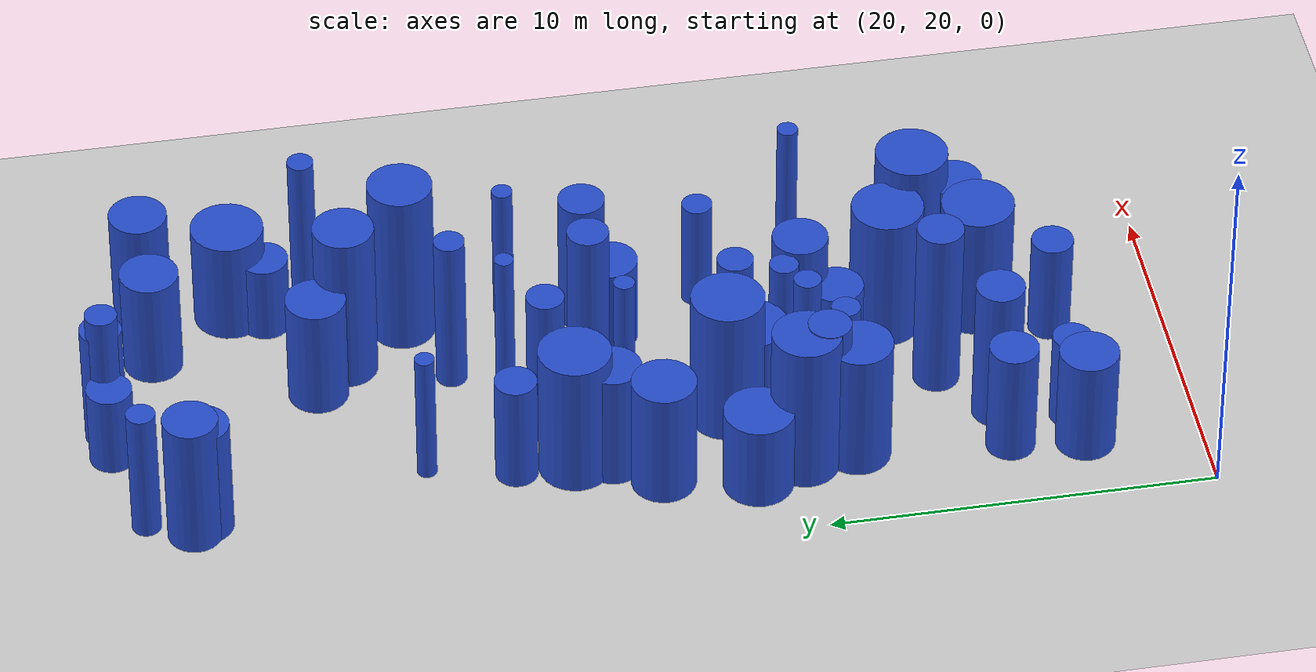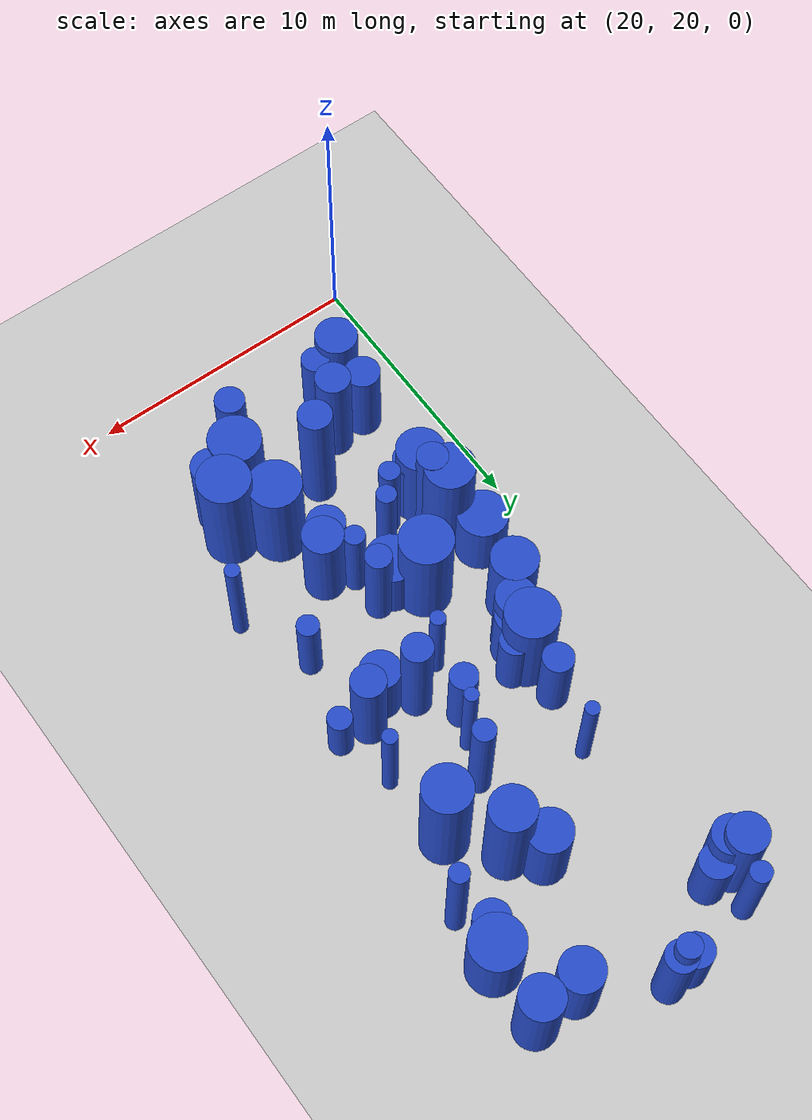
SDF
<sdf version="1.6">
 <world name="default">
  <model name="ground_plane">
   <static>1</static>
   <link name="link">
    <collision name="collision">
     <geometry><plane><normal>0 0 1</normal><size>100 100</size></plane></geometry>
     <surface><friction><ode><mu>100</mu><mu2>50</mu2></ode></friction></surface>
    </collision>
    <visual name="visual">
     <cast_shadows>0</cast_shadows>
     <geometry><plane><normal>0 0 1</normal><size>100 100</size></plane></geometry>
     <material>
      <script><uri>file://media/materials/scripts/gazebo.material</uri><name>Gazebo/Grey</name></script>
     </material>
    </visual>
   </link>
  </model>
  <model name="8">
   <static>0</static>
   <link name="link">
    <inertial>
     <mass>2</mass>
     <inertia><ixx>2.56634</ixx><ixy>0</ixy><ixz>0</ixz><iyy>2.56634</iyy><iyz>0</iyz><izz>0.222806</izz></inertia>
    </inertial>
    <collision name="collision">
     <geometry><cylinder><length>3.83792</length><radius>0.472024</radius></cylinder></geometry>
     <surface><contact><collide_without_contact>1</collide_without_contact></contact></surface>
    </collision>
    <visual name="visual">
     <geometry><cylinder><length>3.83792</length><radius>0.472024</radius></cylinder></geometry>
     <material>
      <script><uri>file://media/materials/scripts/gazebo.material</uri><name>Gazebo/Blue</name></script>
     </material>
    </visual>
    <gravity>0</gravity>
   </link>
   <pose>26.1172 31.3274 1.91896 0 -0 0</pose>
  </model>
  <model name="22">
   <static>0</static>
   <link name="link">
    <inertial>
     <mass>2</mass>
     <inertia><ixx>1.84413</ixx><ixy>0</ixy><ixz>0</ixz><iyy>1.84413</iyy><iyz>0</iyz><izz>0.585229</izz></inertia>
    </inertial>
    <collision name="collision">
     <geometry><cylinder><length>3.05108</length><radius>0.765002</radius></cylinder></geometry>
     <surface><contact><collide_without_contact>1</collide_without_contact></contact></surface>
    </collision>
    <visual name="visual">
     <geometry><cylinder><length>3.05108</length><radius>0.765002</radius></cylinder></geometry>
     <material>
      <script><uri>file://media/materials/scripts/gazebo.material</uri><name>Gazebo/Blue</name></script>
     </material>
    </visual>
    <gravity>0</gravity>
   </link>
   <pose>29.0774 45.9975 1.52554 0 -0 0</pose>
  </model>
  <model name="26">
   <static>0</static>
   <link name="link">
    <inertial>
     <mass>2</mass>
     <inertia><ixx>1.40947</ixx><ixy>0</ixy><ixz>0</ixz><iyy>1.40947</iyy><iyz>0</iyz><izz>0.829551</izz></inertia>
    </inertial>
    <collision name="collision">
     <geometry><cylinder><length>2.44298</length><radius>0.910797</radius></cylinder></geometry>
     <surface><contact><collide_without_contact>1</collide_without_contact></contact></surface>
    </collision>
    <visual name="visual">
     <geometry><cylinder><length>2.44298</length><radius>0.910797</radius></cylinder></geometry>
     <material>
      <script><uri>file://media/materials/scripts/gazebo.material</uri><name>Gazebo/Blue</name></script>
     </material>
    </visual>
    <gravity>0</gravity>
   </link>
   <pose>21.8699 31.4897 1.22149 0 -0 0</pose>
  </model>
  <model name="45">
   <static>0</static>
   <link name="link">
    <inertial>
     <mass>2</mass>
     <inertia><ixx>1.79897</ixx><ixy>0</ixy><ixz>0</ixz><iyy>1.79897</iyy><iyz>0</iyz><izz>0.441379</izz></inertia>
    </inertial>
    <collision name="collision">
     <geometry><cylinder><length>3.07729</length><radius>0.664364</radius></cylinder></geometry>
     <surface><contact><collide_without_contact>1</collide_without_contact></contact></surface>
    </collision>
    <visual name="visual">
     <geometry><cylinder><length>3.07729</length><radius>0.664364</radius></cylinder></geometry>
     <material>
      <script><uri>file://media/materials/scripts/gazebo.material</uri><name>Gazebo/Blue</name></script>
     </material>
    </visual>
    <gravity>0</gravity>
   </link>
   <pose>22.8185 28.6538 1.53864 0 -0 0</pose>
  </model>
  <model name="57">
   <static>0</static>
   <link name="link">
    <inertial>
     <mass>2</mass>
     <inertia><ixx>2.18418</ixx><ixy>0</ixy><ixz>0</ixz><iyy>2.18418</iyy><iyz>0</iyz><izz>0.482198</izz></inertia>
    </inertial>
    <collision name="collision">
     <geometry><cylinder><length>3.41445</length><radius>0.694405</radius></cylinder></geometry>
     <surface><contact><collide_without_contact>1</collide_without_contact></contact></surface>
    </collision>
    <visual name="visual">
     <geometry><cylinder><length>3.41445</length><radius>0.694405</radius></cylinder></geometry>
     <material>
      <script><uri>file://media/materials/scripts/gazebo.material</uri><name>Gazebo/Blue</name></script>
     </material>
    </visual>
    <gravity>0</gravity>
   </link>
   <pose>22.7422 45.4386 1.70723 0 -0 0</pose>
  </model>
  <model name="74">
   <static>0</static>
   <link name="link">
    <inertial>
     <mass>2</mass>
     <inertia><ixx>3.58592</ixx><ixy>0</ixy><ixz>0</ixz><iyy>3.58592</iyy><iyz>0</iyz><izz>0.162136</izz></inertia>
    </inertial>
    <collision name="collision">
     <geometry><cylinder><length>4.58575</length><radius>0.402661</radius></cylinder></geometry>
     <surface><contact><collide_without_contact>1</collide_without_contact></contact></surface>
    </collision>
    <visual name="visual">
     <geometry><cylinder><length>4.58575</length><radius>0.402661</radius></cylinder></geometry>
     <material>
      <script><uri>file://media/materials/scripts/gazebo.material</uri><name>Gazebo/Blue</name></script>
     </material>
    </visual>
    <gravity>0</gravity>
   </link>
   <pose>27.2099 38.5082 2.29288 0 -0 0</pose>
  </model>
  <model name="79">
   <static>0</static>
   <link name="link">
    <inertial>
     <mass>2</mass>
     <inertia><ixx>2.97852</ixx><ixy>0</ixy><ixz>0</ixz><iyy>2.97852</iyy><iyz>0</iyz><izz>0.125524</izz></inertia>
    </inertial>
    <collision name="collision">
     <geometry><cylinder><length>4.18265</length><radius>0.354294</radius></cylinder></geometry>
     <surface><contact><collide_without_contact>1</collide_without_contact></contact></surface>
    </collision>
    <visual name="visual">
     <geometry><cylinder><length>4.18265</length><radius>0.354294</radius></cylinder></geometry>
     <material>
      <script><uri>file://media/materials/scripts/gazebo.material</uri><name>Gazebo/Blue</name></script>
     </material>
    </visual>
    <gravity>0</gravity>
   </link>
   <pose>24.6514 29.743 2.09133 0 -0 0</pose>
  </model>
  <model name="82">
   <static>0</static>
   <link name="link">
    <inertial>
     <mass>2</mass>
     <inertia><ixx>1.92476</ixx><ixy>0</ixy><ixz>0</ixz><iyy>1.92476</iyy><iyz>0</iyz><izz>0.900452</izz></inertia>
    </inertial>
    <collision name="collision">
     <geometry><cylinder><length>2.97442</length><radius>0.948921</radius></cylinder></geometry>
     <surface><contact><collide_without_contact>1</collide_without_contact></contact></surface>
    </collision>
    <visual name="visual">
     <geometry><cylinder><length>2.97442</length><radius>0.948921</radius></cylinder></geometry>
     <material>
      <script><uri>file://media/materials/scripts/gazebo.material</uri><name>Gazebo/Blue</name></script>
     </material>
    </visual>
    <gravity>0</gravity>
   </link>
   <pose>30.6164 43.7903 1.48721 0 -0 0</pose>
  </model>
  <model name="99">
   <static>0</static>
   <link name="link">
    <inertial>
     <mass>2</mass>
     <inertia><ixx>2.24551</ixx><ixy>0</ixy><ixz>0</ixz><iyy>2.24551</iyy><iyz>0</iyz><izz>0.698313</izz></inertia>
    </inertial>
    <collision name="collision">
     <geometry><cylinder><length>3.37315</length><radius>0.835651</radius></cylinder></geometry>
     <surface><contact><collide_without_contact>1</collide_without_contact></contact></surface>
    </collision>
    <visual name="visual">
     <geometry><cylinder><length>3.37315</length><radius>0.835651</radius></cylinder></geometry>
     <material>
      <script><uri>file://media/materials/scripts/gazebo.material</uri><name>Gazebo/Blue</name></script>
     </material>
    </visual>
    <gravity>0</gravity>
   </link>
   <pose>22.3578 33.8355 1.68657 0 -0 0</pose>
  </model>
  <model name="100">
   <static>0</static>
   <link name="link">
    <inertial>
     <mass>2</mass>
     <inertia><ixx>1.16576</ixx><ixy>0</ixy><ixz>0</ixz><iyy>1.16576</iyy><iyz>0</iyz><izz>0.479179</izz></inertia>
    </inertial>
    <collision name="collision">
     <geometry><cylinder><length>2.35733</length><radius>0.692228</radius></cylinder></geometry>
     <surface><contact><collide_without_contact>1</collide_without_contact></contact></surface>
    </collision>
    <visual name="visual">
     <geometry><cylinder><length>2.35733</length><radius>0.692228</radius></cylinder></geometry>
     <material>
      <script><uri>file://media/materials/scripts/gazebo.material</uri><name>Gazebo/Blue</name></script>
     </material>
    </visual>
    <gravity>0</gravity>
   </link>
   <pose>26.3754 28.6172 1.17867 0 -0 0</pose>
  </model>
  <model name="102">
   <static>0</static>
   <link name="link">
    <inertial>
     <mass>2</mass>
     <inertia><ixx>2.03174</ixx><ixy>0</ixy><ixz>0</ixz><iyy>2.03174</iyy><iyz>0</iyz><izz>0.142404</izz></inertia>
    </inertial>
    <collision name="collision">
     <geometry><cylinder><length>3.42975</length><radius>0.377365</radius></cylinder></geometry>
     <surface><contact><collide_without_contact>1</collide_without_contact></contact></surface>
    </collision>
    <visual name="visual">
     <geometry><cylinder><length>3.42975</length><radius>0.377365</radius></cylinder></geometry>
     <material>
      <script><uri>file://media/materials/scripts/gazebo.material</uri><name>Gazebo/Blue</name></script>
     </material>
    </visual>
    <gravity>0</gravity>
   </link>
   <pose>26.1844 30.0475 1.71488 0 -0 0</pose>
  </model>
  <model name="120">
   <static>0</static>
   <link name="link">
    <inertial>
     <mass>2</mass>
     <inertia><ixx>1.34975</ixx><ixy>0</ixy><ixz>0</ixz><iyy>1.34975</iyy><iyz>0</iyz><izz>0.510108</izz></inertia>
    </inertial>
    <collision name="collision">
     <geometry><cylinder><length>2.56285</length><radius>0.714219</radius></cylinder></geometry>
     <surface><contact><collide_without_contact>1</collide_without_contact></contact></surface>
    </collision>
    <visual name="visual">
     <geometry><cylinder><length>2.56285</length><radius>0.714219</radius></cylinder></geometry>
     <material>
      <script><uri>file://media/materials/scripts/gazebo.material</uri><name>Gazebo/Blue</name></script>
     </material>
    </visual>
    <gravity>0</gravity>
   </link>
   <pose>28.1202 34.2139 1.28142 0 -0 0</pose>
  </model>
  <model name="126">
   <static>0</static>
   <link name="link">
    <inertial>
     <mass>2</mass>
     <inertia><ixx>1.99303</ixx><ixy>0</ixy><ixz>0</ixz><iyy>1.99303</iyy><iyz>0</iyz><izz>0.607698</izz></inertia>
    </inertial>
    <collision name="collision">
     <geometry><cylinder><length>3.18356</length><radius>0.77955</radius></cylinder></geometry>
     <surface><contact><collide_without_contact>1</collide_without_contact></contact></surface>
    </collision>
    <visual name="visual">
     <geometry><cylinder><length>3.18356</length><radius>0.77955</radius></cylinder></geometry>
     <material>
      <script><uri>file://media/materials/scripts/gazebo.material</uri><name>Gazebo/Blue</name></script>
     </material>
    </visual>
    <gravity>0</gravity>
   </link>
   <pose>27.1803 41.9705 1.59178 0 -0 0</pose>
  </model>
  <model name="128">
   <static>0</static>
   <link name="link">
    <inertial>
     <mass>2</mass>
     <inertia><ixx>2.677</ixx><ixy>0</ixy><ixz>0</ixz><iyy>2.677</iyy><iyz>0</iyz><izz>0.902624</izz></inertia>
    </inertial>
    <collision name="collision">
     <geometry><cylinder><length>3.65433</length><radius>0.950065</radius></cylinder></geometry>
     <surface><contact><collide_without_contact>1</collide_without_contact></contact></surface>
    </collision>
    <visual name="visual">
     <geometry><cylinder><length>3.65433</length><radius>0.950065</radius></cylinder></geometry>
     <material>
      <script><uri>file://media/materials/scripts/gazebo.material</uri><name>Gazebo/Blue</name></script>
     </material>
    </visual>
    <gravity>0</gravity>
   </link>
   <pose>27.4181 24.7427 1.82716 0 -0 0</pose>
  </model>
  <model name="129">
   <static>0</static>
   <link name="link">
    <inertial>
     <mass>2</mass>
     <inertia><ixx>4.2289</ixx><ixy>0</ixy><ixz>0</ixz><iyy>4.2289</iyy><iyz>0</iyz><izz>0.722048</izz></inertia>
    </inertial>
    <collision name="collision">
     <geometry><cylinder><length>4.81739</length><radius>0.849734</radius></cylinder></geometry>
     <surface><contact><collide_without_contact>1</collide_without_contact></contact></surface>
    </collision>
    <visual name="visual">
     <geometry><cylinder><length>4.81739</length><radius>0.849734</radius></cylinder></geometry>
     <material>
      <script><uri>file://media/materials/scripts/gazebo.material</uri><name>Gazebo/Blue</name></script>
     </material>
    </visual>
    <gravity>0</gravity>
   </link>
   <pose>29.3469 39.4504 2.40869 0 -0 0</pose>
  </model>
  <model name="136">
   <static>0</static>
   <link name="link">
    <inertial>
     <mass>2</mass>
     <inertia>
      <ixx>2.36535</ixx>
      <ixy>0</ixy>
      <ixz>0</ixz>
      <iyy>2.36535</iyy>
      <iyz>0</iyz>
      <izz>0.0754725</izz>
     </inertia>
    </inertial>
    <collision name="collision">
     <geometry><cylinder><length>3.73706</length><radius>0.274723</radius></cylinder></geometry>
     <surface><contact><collide_without_contact>1</collide_without_contact></contact></surface>
    </collision>
    <visual name="visual">
     <geometry><cylinder><length>3.73706</length><radius>0.274723</radius></cylinder></geometry>
     <material>
      <script><uri>file://media/materials/scripts/gazebo.material</uri><name>Gazebo/Blue</name></script>
     </material>
    </visual>
    <gravity>0</gravity>
   </link>
   <pose>25.8349 34.2419 1.86853 0 -0 0</pose>
  </model>
  <model name="141">
   <static>0</static>
   <link name="link">
    <inertial>
     <mass>2</mass>
     <inertia><ixx>2.67739</ixx><ixy>0</ixy><ixz>0</ixz><iyy>2.67739</iyy><iyz>0</iyz><izz>0.739102</izz></inertia>
    </inertial>
    <collision name="collision">
     <geometry><cylinder><length>3.72116</length><radius>0.85971</radius></cylinder></geometry>
     <surface><contact><collide_without_contact>1</collide_without_contact></contact></surface>
    </collision>
    <visual name="visual">
     <geometry><cylinder><length>3.72116</length><radius>0.85971</radius></cylinder></geometry>
     <material>
      <script><uri>file://media/materials/scripts/gazebo.material</uri><name>Gazebo/Blue</name></script>
     </material>
    </visual>
    <gravity>0</gravity>
   </link>
   <pose>22.5502 28.8034 1.86058 0 -0 0</pose>
  </model>
  <model name="144">
   <static>0</static>
   <link name="link">
    <inertial>
     <mass>2</mass>
     <inertia><ixx>2.96724</ixx><ixy>0</ixy><ixz>0</ixz><iyy>2.96724</iyy><iyz>0</iyz><izz>0.88856</izz></inertia>
    </inertial>
    <collision name="collision">
     <geometry><cylinder><length>3.89073</length><radius>0.942635</radius></cylinder></geometry>
     <surface><contact><collide_without_contact>1</collide_without_contact></contact></surface>
    </collision>
    <visual name="visual">
     <geometry><cylinder><length>3.89073</length><radius>0.942635</radius></cylinder></geometry>
     <material>
      <script><uri>file://media/materials/scripts/gazebo.material</uri><name>Gazebo/Blue</name></script>
     </material>
    </visual>
    <gravity>0</gravity>
   </link>
   <pose>23.2912 35.9452 1.94536 0 -0 0</pose>
  </model>
  <model name="147">
   <static>0</static>
   <link name="link">
    <inertial>
     <mass>2</mass>
     <inertia><ixx>1.3619</ixx><ixy>0</ixy><ixz>0</ixz><iyy>1.3619</iyy><iyz>0</iyz><izz>0.369863</izz></inertia>
    </inertial>
    <collision name="collision">
     <geometry><cylinder><length>2.65741</length><radius>0.608163</radius></cylinder></geometry>
     <surface><contact><collide_without_contact>1</collide_without_contact></contact></surface>
    </collision>
    <visual name="visual">
     <geometry><cylinder><length>2.65741</length><radius>0.608163</radius></cylinder></geometry>
     <material>
      <script><uri>file://media/materials/scripts/gazebo.material</uri><name>Gazebo/Blue</name></script>
     </material>
    </visual>
    <gravity>0</gravity>
   </link>
   <pose>23.4438 45.6917 1.3287 0 -0 0</pose>
  </model>
  <model name="154">
   <static>0</static>
   <link name="link">
    <inertial>
     <mass>2</mass>
     <inertia><ixx>1.7028</ixx><ixy>0</ixy><ixz>0</ixz><iyy>1.7028</iyy><iyz>0</iyz><izz>0.159402</izz></inertia>
    </inertial>
    <collision name="collision">
     <geometry><cylinder><length>3.12067</length><radius>0.399252</radius></cylinder></geometry>
     <surface><contact><collide_without_contact>1</collide_without_contact></contact></surface>
    </collision>
    <visual name="visual">
     <geometry><cylinder><length>3.12067</length><radius>0.399252</radius></cylinder></geometry>
     <material>
      <script><uri>file://media/materials/scripts/gazebo.material</uri><name>Gazebo/Blue</name></script>
     </material>
    </visual>
    <gravity>0</gravity>
   </link>
   <pose>29.2638 31.7399 1.56033 0 -0 0</pose>
  </model>
  <model name="162">
   <static>0</static>
   <link name="link">
    <inertial>
     <mass>2</mass>
     <inertia><ixx>3.96253</ixx><ixy>0</ixy><ixz>0</ixz><iyy>3.96253</iyy><iyz>0</iyz><izz>0.116789</izz></inertia>
    </inertial>
    <collision name="collision">
     <geometry><cylinder><length>4.83992</length><radius>0.341744</radius></cylinder></geometry>
     <surface><contact><collide_without_contact>1</collide_without_contact></contact></surface>
    </collision>
    <visual name="visual">
     <geometry><cylinder><length>4.83992</length><radius>0.341744</radius></cylinder></geometry>
     <material>
      <script><uri>file://media/materials/scripts/gazebo.material</uri><name>Gazebo/Blue</name></script>
     </material>
    </visual>
    <gravity>0</gravity>
   </link>
   <pose>30.6669 41.8212 2.41996 0 -0 0</pose>
  </model>
  <model name="180">
   <static>0</static>
   <link name="link">
    <inertial>
     <mass>2</mass>
     <inertia><ixx>2.42849</ixx><ixy>0</ixy><ixz>0</ixz><iyy>2.42849</iyy><iyz>0</iyz><izz>0.141849</izz></inertia>
    </inertial>
    <collision name="collision">
     <geometry><cylinder><length>3.76103</length><radius>0.376628</radius></cylinder></geometry>
     <surface><contact><collide_without_contact>1</collide_without_contact></contact></surface>
    </collision>
    <visual name="visual">
     <geometry><cylinder><length>3.76103</length><radius>0.376628</radius></cylinder></geometry>
     <material>
      <script><uri>file://media/materials/scripts/gazebo.material</uri><name>Gazebo/Blue</name></script>
     </material>
    </visual>
    <gravity>0</gravity>
   </link>
   <pose>23.9123 28.8909 1.88052 0 -0 0</pose>
  </model>
  <model name="181">
   <static>0</static>
   <link name="link">
    <inertial>
     <mass>2</mass>
     <inertia><ixx>3.74153</ixx><ixy>0</ixy><ixz>0</ixz><iyy>3.74153</iyy><iyz>0</iyz><izz>0.892176</izz></inertia>
    </inertial>
    <collision name="collision">
     <geometry><cylinder><length>4.44665</length><radius>0.944551</radius></cylinder></geometry>
     <surface><contact><collide_without_contact>1</collide_without_contact></contact></surface>
    </collision>
    <visual name="visual">
     <geometry><cylinder><length>4.44665</length><radius>0.944551</radius></cylinder></geometry>
     <material>
      <script><uri>file://media/materials/scripts/gazebo.material</uri><name>Gazebo/Blue</name></script>
     </material>
    </visual>
    <gravity>0</gravity>
   </link>
   <pose>28.7835 26.22 2.22332 0 -0 0</pose>
  </model>
  <model name="190">
   <static>0</static>
   <link name="link">
    <inertial>
     <mass>2</mass>
     <inertia><ixx>1.0233</ixx><ixy>0</ixy><ixz>0</ixz><iyy>1.0233</iyy><iyz>0</iyz><izz>0.404225</izz></inertia>
    </inertial>
    <collision name="collision">
     <geometry><cylinder><length>2.21971</length><radius>0.635787</radius></cylinder></geometry>
     <surface><contact><collide_without_contact>1</collide_without_contact></contact></surface>
    </collision>
    <visual name="visual">
     <geometry><cylinder><length>2.21971</length><radius>0.635787</radius></cylinder></geometry>
     <material>
      <script><uri>file://media/materials/scripts/gazebo.material</uri><name>Gazebo/Blue</name></script>
     </material>
    </visual>
    <gravity>0</gravity>
   </link>
   <pose>30.1249 42.9314 1.10985 0 -0 0</pose>
  </model>
  <model name="196">
   <static>0</static>
   <link name="link">
    <inertial>
     <mass>2</mass>
     <inertia><ixx>0.9402</ixx><ixy>0</ixy><ixz>0</ixz><iyy>0.9402</iyy><iyz>0</iyz><izz>0.188047</izz></inertia>
    </inertial>
    <collision name="collision">
     <geometry><cylinder><length>2.25323</length><radius>0.433644</radius></cylinder></geometry>
     <surface><contact><collide_without_contact>1</collide_without_contact></contact></surface>
    </collision>
    <visual name="visual">
     <geometry><cylinder><length>2.25323</length><radius>0.433644</radius></cylinder></geometry>
     <material>
      <script><uri>file://media/materials/scripts/gazebo.material</uri><name>Gazebo/Blue</name></script>
     </material>
    </visual>
    <gravity>0</gravity>
   </link>
   <pose>30.1171 34.7223 1.12662 0 -0 0</pose>
  </model>
  <model name="204">
   <static>0</static>
   <link name="link">
    <inertial>
     <mass>2</mass>
     <inertia><ixx>1.82067</ixx><ixy>0</ixy><ixz>0</ixz><iyy>1.82067</iyy><iyz>0</iyz><izz>0.591896</izz></inertia>
    </inertial>
    <collision name="collision">
     <geometry><cylinder><length>3.02462</length><radius>0.769348</radius></cylinder></geometry>
     <surface><contact><collide_without_contact>1</collide_without_contact></contact></surface>
    </collision>
    <visual name="visual">
     <geometry><cylinder><length>3.02462</length><radius>0.769348</radius></cylinder></geometry>
     <material>
      <script><uri>file://media/materials/scripts/gazebo.material</uri><name>Gazebo/Blue</name></script>
     </material>
    </visual>
    <gravity>0</gravity>
   </link>
   <pose>21.9823 22.9997 1.51231 0 -0 0</pose>
  </model>
  <model name="221">
   <static>0</static>
   <link name="link">
    <inertial>
     <mass>2</mass>
     <inertia><ixx>2.35666</ixx><ixy>0</ixy><ixz>0</ixz><iyy>2.35666</iyy><iyz>0</iyz><izz>0.516233</izz></inertia>
    </inertial>
    <collision name="collision">
     <geometry><cylinder><length>3.54842</length><radius>0.718494</radius></cylinder></geometry>
     <surface><contact><collide_without_contact>1</collide_without_contact></contact></surface>
    </collision>
    <visual name="visual">
     <geometry><cylinder><length>3.54842</length><radius>0.718494</radius></cylinder></geometry>
     <material>
      <script><uri>file://media/materials/scripts/gazebo.material</uri><name>Gazebo/Blue</name></script>
     </material>
    </visual>
    <gravity>0</gravity>
   </link>
   <pose>28.6254 25.1105 1.77421 0 -0 0</pose>
  </model>
  <model name="222">
   <static>0</static>
   <link name="link">
    <inertial>
     <mass>2</mass>
     <inertia>
      <ixx>2.72442</ixx>
      <ixy>0</ixy>
      <ixz>0</ixz>
      <iyy>2.72442</iyy>
      <iyz>0</iyz>
      <izz>0.0740423</izz>
     </inertia>
    </inertial>
    <collision name="collision">
     <geometry><cylinder><length>4.01552</length><radius>0.272107</radius></cylinder></geometry>
     <surface><contact><collide_without_contact>1</collide_without_contact></contact></surface>
    </collision>
    <visual name="visual">
     <geometry><cylinder><length>4.01552</length><radius>0.272107</radius></cylinder></geometry>
     <material>
      <script><uri>file://media/materials/scripts/gazebo.material</uri><name>Gazebo/Blue</name></script>
     </material>
    </visual>
    <gravity>0</gravity>
   </link>
   <pose>29.5865 36.7735 2.00776 0 -0 0</pose>
  </model>
  <model name="231">
   <static>0</static>
   <link name="link">
    <inertial>
     <mass>2</mass>
     <inertia>
      <ixx>3.14707</ixx>
      <ixy>0</ixy>
      <ixz>0</ixz>
      <iyy>3.14707</iyy>
      <iyz>0</iyz>
      <izz>0.0736251</izz>
     </inertia>
    </inertial>
    <collision name="collision">
     <geometry><cylinder><length>4.3199</length><radius>0.271339</radius></cylinder></geometry>
     <surface><contact><collide_without_contact>1</collide_without_contact></contact></surface>
    </collision>
    <visual name="visual">
     <geometry><cylinder><length>4.3199</length><radius>0.271339</radius></cylinder></geometry>
     <material>
      <script><uri>file://media/materials/scripts/gazebo.material</uri><name>Gazebo/Blue</name></script>
     </material>
    </visual>
    <gravity>0</gravity>
   </link>
   <pose>30.4088 29.1587 2.15995 0 -0 0</pose>
  </model>
  <model name="250">
   <static>0</static>
   <link name="link">
    <inertial>
     <mass>2</mass>
     <inertia><ixx>2.1614</ixx><ixy>0</ixy><ixz>0</ixz><iyy>2.1614</iyy><iyz>0</iyz><izz>0.533303</izz></inertia>
    </inertial>
    <collision name="collision">
     <geometry><cylinder><length>3.37172</length><radius>0.730276</radius></cylinder></geometry>
     <surface><contact><collide_without_contact>1</collide_without_contact></contact></surface>
    </collision>
    <visual name="visual">
     <geometry><cylinder><length>3.37172</length><radius>0.730276</radius></cylinder></geometry>
     <material>
      <script><uri>file://media/materials/scripts/gazebo.material</uri><name>Gazebo/Blue</name></script>
     </material>
    </visual>
    <gravity>0</gravity>
   </link>
   <pose>23.1631 34.9862 1.68586 0 -0 0</pose>
  </model>
  <model name="260">
   <static>0</static>
   <link name="link">
    <inertial>
     <mass>2</mass>
     <inertia><ixx>1.58964</ixx><ixy>0</ixy><ixz>0</ixz><iyy>1.58964</iyy><iyz>0</iyz><izz>0.29895</izz></inertia>
    </inertial>
    <collision name="collision">
     <geometry><cylinder><length>2.93956</length><radius>0.546763</radius></cylinder></geometry>
     <surface><contact><collide_without_contact>1</collide_without_contact></contact></surface>
    </collision>
    <visual name="visual">
     <geometry><cylinder><length>2.93956</length><radius>0.546763</radius></cylinder></geometry>
     <material>
      <script><uri>file://media/materials/scripts/gazebo.material</uri><name>Gazebo/Blue</name></script>
     </material>
    </visual>
    <gravity>0</gravity>
   </link>
   <pose>26.4877 22.9618 1.46978 0 -0 0</pose>
  </model>
  <model name="274">
   <static>0</static>
   <link name="link">
    <inertial>
     <mass>2</mass>
     <inertia><ixx>2.51652</ixx><ixy>0</ixy><ixz>0</ixz><iyy>2.51652</iyy><iyz>0</iyz><izz>0.572204</izz></inertia>
    </inertial>
    <collision name="collision">
     <geometry><cylinder><length>3.65821</length><radius>0.756441</radius></cylinder></geometry>
     <surface><contact><collide_without_contact>1</collide_without_contact></contact></surface>
    </collision>
    <visual name="visual">
     <geometry><cylinder><length>3.65821</length><radius>0.756441</radius></cylinder></geometry>
     <material>
      <script><uri>file://media/materials/scripts/gazebo.material</uri><name>Gazebo/Blue</name></script>
     </material>
    </visual>
    <gravity>0</gravity>
   </link>
   <pose>30.7067 46.0546 1.82911 0 -0 0</pose>
  </model>
  <model name="289">
   <static>0</static>
   <link name="link">
    <inertial>
     <mass>2</mass>
     <inertia><ixx>1.52306</ixx><ixy>0</ixy><ixz>0</ixz><iyy>1.52306</iyy><iyz>0</iyz><izz>0.572277</izz></inertia>
    </inertial>
    <collision name="collision">
     <geometry><cylinder><length>2.72424</length><radius>0.75649</radius></cylinder></geometry>
     <surface><contact><collide_without_contact>1</collide_without_contact></contact></surface>
    </collision>
    <visual name="visual">
     <geometry><cylinder><length>2.72424</length><radius>0.75649</radius></cylinder></geometry>
     <material>
      <script><uri>file://media/materials/scripts/gazebo.material</uri><name>Gazebo/Blue</name></script>
     </material>
    </visual>
    <gravity>0</gravity>
   </link>
   <pose>23.3621 35.3029 1.36212 0 -0 0</pose>
  </model>
  <model name="296">
   <static>0</static>
   <link name="link">
    <inertial>
     <mass>2</mass>
     <inertia><ixx>1.3791</ixx><ixy>0</ixy><ixz>0</ixz><iyy>1.3791</iyy><iyz>0</iyz><izz>0.316834</izz></inertia>
    </inertial>
    <collision name="collision">
     <geometry><cylinder><length>2.70631</length><radius>0.56288</radius></cylinder></geometry>
     <surface><contact><collide_without_contact>1</collide_without_contact></contact></surface>
    </collision>
    <visual name="visual">
     <geometry><cylinder><length>2.70631</length><radius>0.56288</radius></cylinder></geometry>
     <material>
      <script><uri>file://media/materials/scripts/gazebo.material</uri><name>Gazebo/Blue</name></script>
     </material>
    </visual>
    <gravity>0</gravity>
   </link>
   <pose>23.9351 36.0155 1.35315 0 -0 0</pose>
  </model>
  <model name="307">
   <static>0</static>
   <link name="link">
    <inertial>
     <mass>2</mass>
     <inertia><ixx>2.42846</ixx><ixy>0</ixy><ixz>0</ixz><iyy>2.42846</iyy><iyz>0</iyz><izz>0.06549</izz></inertia>
    </inertial>
    <collision name="collision">
     <geometry><cylinder><length>3.79134</length><radius>0.25591</radius></cylinder></geometry>
     <surface><contact><collide_without_contact>1</collide_without_contact></contact></surface>
    </collision>
    <visual name="visual">
     <geometry><cylinder><length>3.79134</length><radius>0.25591</radius></cylinder></geometry>
     <material>
      <script><uri>file://media/materials/scripts/gazebo.material</uri><name>Gazebo/Blue</name></script>
     </material>
    </visual>
    <gravity>0</gravity>
   </link>
   <pose>23.7601 39.6787 1.89567 0 -0 0</pose>
  </model>
  <model name="319">
   <static>0</static>
   <link name="link">
    <inertial>
     <mass>2</mass>
     <inertia><ixx>2.77627</ixx><ixy>0</ixy><ixz>0</ixz><iyy>2.77627</iyy><iyz>0</iyz><izz>0.371066</izz></inertia>
    </inertial>
    <collision name="collision">
     <geometry><cylinder><length>3.94264</length><radius>0.609152</radius></cylinder></geometry>
     <surface><contact><collide_without_contact>1</collide_without_contact></contact></surface>
    </collision>
    <visual name="visual">
     <geometry><cylinder><length>3.94264</length><radius>0.609152</radius></cylinder></geometry>
     <material>
      <script><uri>file://media/materials/scripts/gazebo.material</uri><name>Gazebo/Blue</name></script>
     </material>
    </visual>
    <gravity>0</gravity>
   </link>
   <pose>29.0111 34.8072 1.97132 0 -0 0</pose>
  </model>
  <model name="326">
   <static>0</static>
   <link name="link">
    <inertial>
     <mass>2</mass>
     <inertia><ixx>3.38613</ixx><ixy>0</ixy><ixz>0</ixz><iyy>3.38613</iyy><iyz>0</iyz><izz>0.312105</izz></inertia>
    </inertial>
    <collision name="collision">
     <geometry><cylinder><length>4.40232</length><radius>0.558663</radius></cylinder></geometry>
     <surface><contact><collide_without_contact>1</collide_without_contact></contact></surface>
    </collision>
    <visual name="visual">
     <geometry><cylinder><length>4.40232</length><radius>0.558663</radius></cylinder></geometry>
     <material>
      <script><uri>file://media/materials/scripts/gazebo.material</uri><name>Gazebo/Blue</name></script>
     </material>
    </visual>
    <gravity>0</gravity>
   </link>
   <pose>22.6228 29.5674 2.20116 0 -0 0</pose>
  </model>
  <model name="335">
   <static>0</static>
   <link name="link">
    <inertial>
     <mass>2</mass>
     <inertia><ixx>3.37475</ixx><ixy>0</ixy><ixz>0</ixz><iyy>3.37475</iyy><iyz>0</iyz><izz>0.295029</izz></inertia>
    </inertial>
    <collision name="collision">
     <geometry><cylinder><length>4.40039</length><radius>0.543166</radius></cylinder></geometry>
     <surface><contact><collide_without_contact>1</collide_without_contact></contact></surface>
    </collision>
    <visual name="visual">
     <geometry><cylinder><length>4.40039</length><radius>0.543166</radius></cylinder></geometry>
     <material>
      <script><uri>file://media/materials/scripts/gazebo.material</uri><name>Gazebo/Blue</name></script>
     </material>
    </visual>
    <gravity>0</gravity>
   </link>
   <pose>27.1786 34.9452 2.20019 0 -0 0</pose>
  </model>
  <model name="342">
   <static>0</static>
   <link name="link">
    <inertial>
     <mass>2</mass>
     <inertia>
      <ixx>2.98667</ixx>
      <ixy>0</ixy>
      <ixz>0</ixz>
      <iyy>2.98667</iyy>
      <iyz>0</iyz>
      <izz>0.0633312</izz>
     </inertia>
    </inertial>
    <collision name="collision">
     <geometry><cylinder><length>4.2107</length><radius>0.251657</radius></cylinder></geometry>
     <surface><contact><collide_without_contact>1</collide_without_contact></contact></surface>
    </collision>
    <visual name="visual">
     <geometry><cylinder><length>4.2107</length><radius>0.251657</radius></cylinder></geometry>
     <material>
      <script><uri>file://media/materials/scripts/gazebo.material</uri><name>Gazebo/Blue</name></script>
     </material>
    </visual>
    <gravity>0</gravity>
   </link>
   <pose>26.7034 37.1865 2.10535 0 -0 0</pose>
  </model>
  <model name="345">
   <static>0</static>
   <link name="link">
    <inertial>
     <mass>2</mass>
     <inertia><ixx>2.28596</ixx><ixy>0</ixy><ixz>0</ixz><iyy>2.28596</iyy><iyz>0</iyz><izz>0.298648</izz></inertia>
    </inertial>
    <collision name="collision">
     <geometry><cylinder><length>3.58048</length><radius>0.546487</radius></cylinder></geometry>
     <surface><contact><collide_without_contact>1</collide_without_contact></contact></surface>
    </collision>
    <visual name="visual">
     <geometry><cylinder><length>3.58048</length><radius>0.546487</radius></cylinder></geometry>
     <material>
      <script><uri>file://media/materials/scripts/gazebo.material</uri><name>Gazebo/Blue</name></script>
     </material>
    </visual>
    <gravity>0</gravity>
   </link>
   <pose>26.5296 47.5162 1.79024 0 -0 0</pose>
  </model>
  <model name="354">
   <static>0</static>
   <link name="link">
    <inertial>
     <mass>2</mass>
     <inertia><ixx>1.98829</ixx><ixy>0</ixy><ixz>0</ixz><iyy>1.98829</iyy><iyz>0</iyz><izz>0.402852</izz></inertia>
    </inertial>
    <collision name="collision">
     <geometry><cylinder><length>3.27432</length><radius>0.634706</radius></cylinder></geometry>
     <surface><contact><collide_without_contact>1</collide_without_contact></contact></surface>
    </collision>
    <visual name="visual">
     <geometry><cylinder><length>3.27432</length><radius>0.634706</radius></cylinder></geometry>
     <material>
      <script><uri>file://media/materials/scripts/gazebo.material</uri><name>Gazebo/Blue</name></script>
     </material>
    </visual>
    <gravity>0</gravity>
   </link>
   <pose>22.1905 24.901 1.63716 0 -0 0</pose>
  </model>
  <model name="357">
   <static>0</static>
   <link name="link">
    <inertial>
     <mass>2</mass>
     <inertia><ixx>2.33492</ixx><ixy>0</ixy><ixz>0</ixz><iyy>2.33492</iyy><iyz>0</iyz><izz>0.527707</izz></inertia>
    </inertial>
    <collision name="collision">
     <geometry><cylinder><length>3.52511</length><radius>0.726435</radius></cylinder></geometry>
     <surface><contact><collide_without_contact>1</collide_without_contact></contact></surface>
    </collision>
    <visual name="visual">
     <geometry><cylinder><length>3.52511</length><radius>0.726435</radius></cylinder></geometry>
     <material>
      <script><uri>file://media/materials/scripts/gazebo.material</uri><name>Gazebo/Blue</name></script>
     </material>
    </visual>
    <gravity>0</gravity>
   </link>
   <pose>27.0647 29.4598 1.76255 0 -0 0</pose>
  </model>
  <model name="360">
   <static>0</static>
   <link name="link">
    <inertial>
     <mass>2</mass>
     <inertia><ixx>3.59573</ixx><ixy>0</ixy><ixz>0</ixz><iyy>3.59573</iyy><iyz>0</iyz><izz>0.803388</izz></inertia>
    </inertial>
    <collision name="collision">
     <geometry><cylinder><length>4.3777</length><radius>0.896319</radius></cylinder></geometry>
     <surface><contact><collide_without_contact>1</collide_without_contact></contact></surface>
    </collision>
    <visual name="visual">
     <geometry><cylinder><length>4.3777</length><radius>0.896319</radius></cylinder></geometry>
     <material>
      <script><uri>file://media/materials/scripts/gazebo.material</uri><name>Gazebo/Blue</name></script>
     </material>
    </visual>
    <gravity>0</gravity>
   </link>
   <pose>22.3683 30.2001 2.18885 0 -0 0</pose>
  </model>
  <model name="364">
   <static>0</static>
   <link name="link">
    <inertial>
     <mass>2</mass>
     <inertia><ixx>4.31553</ixx><ixy>0</ixy><ixz>0</ixz><iyy>4.31553</iyy><iyz>0</iyz><izz>0.366486</izz></inertia>
    </inertial>
    <collision name="collision">
     <geometry><cylinder><length>4.97933</length><radius>0.605381</radius></cylinder></geometry>
     <surface><contact><collide_without_contact>1</collide_without_contact></contact></surface>
    </collision>
    <visual name="visual">
     <geometry><cylinder><length>4.97933</length><radius>0.605381</radius></cylinder></geometry>
     <material>
      <script><uri>file://media/materials/scripts/gazebo.material</uri><name>Gazebo/Blue</name></script>
     </material>
    </visual>
    <gravity>0</gravity>
   </link>
   <pose>25.0681 26.2428 2.48967 0 -0 0</pose>
  </model>
  <model name="382">
   <static>0</static>
   <link name="link">
    <inertial>
     <mass>2</mass>
     <inertia><ixx>3.17066</ixx><ixy>0</ixy><ixz>0</ixz><iyy>3.17066</iyy><iyz>0</iyz><izz>0.395646</izz></inertia>
    </inertial>
    <collision name="collision">
     <geometry><cylinder><length>4.22339</length><radius>0.629004</radius></cylinder></geometry>
     <surface><contact><collide_without_contact>1</collide_without_contact></contact></surface>
    </collision>
    <visual name="visual">
     <geometry><cylinder><length>4.22339</length><radius>0.629004</radius></cylinder></geometry>
     <material>
      <script><uri>file://media/materials/scripts/gazebo.material</uri><name>Gazebo/Blue</name></script>
     </material>
    </visual>
    <gravity>0</gravity>
   </link>
   <pose>23.4946 25.0009 2.11169 0 -0 0</pose>
  </model>
  <model name="411">
   <static>0</static>
   <link name="link">
    <inertial>
     <mass>2</mass>
     <inertia><ixx>3.12757</ixx><ixy>0</ixy><ixz>0</ixz><iyy>3.12757</iyy><iyz>0</iyz><izz>0.90738</izz></inertia>
    </inertial>
    <collision name="collision">
     <geometry><cylinder><length>4.00541</length><radius>0.952565</radius></cylinder></geometry>
     <surface><contact><collide_without_contact>1</collide_without_contact></contact></surface>
    </collision>
    <visual name="visual">
     <geometry><cylinder><length>4.00541</length><radius>0.952565</radius></cylinder></geometry>
     <material>
      <script><uri>file://media/materials/scripts/gazebo.material</uri><name>Gazebo/Blue</name></script>
     </material>
    </visual>
    <gravity>0</gravity>
   </link>
   <pose>24.5215 31.8157 2.0027 0 -0 0</pose>
  </model>
  <model name="421">
   <static>0</static>
   <link name="link">
    <inertial>
     <mass>2</mass>
     <inertia><ixx>2.46144</ixx><ixy>0</ixy><ixz>0</ixz><iyy>2.46144</iyy><iyz>0</iyz><izz>0.140184</izz></inertia>
    </inertial>
    <collision name="collision">
     <geometry><cylinder><length>3.78789</length><radius>0.374411</radius></cylinder></geometry>
     <surface><contact><collide_without_contact>1</collide_without_contact></contact></surface>
    </collision>
    <visual name="visual">
     <geometry><cylinder><length>3.78789</length><radius>0.374411</radius></cylinder></geometry>
     <material>
      <script><uri>file://media/materials/scripts/gazebo.material</uri><name>Gazebo/Blue</name></script>
     </material>
    </visual>
    <gravity>0</gravity>
   </link>
   <pose>22.9503 46.9327 1.89394 0 -0 0</pose>
  </model>
  <model name="423">
   <static>0</static>
   <link name="link">
    <inertial>
     <mass>2</mass>
     <inertia><ixx>1.2988</ixx><ixy>0</ixy><ixz>0</ixz><iyy>1.2988</iyy><iyz>0</iyz><izz>0.845556</izz></inertia>
    </inertial>
    <collision name="collision">
     <geometry><cylinder><length>2.29263</length><radius>0.919541</radius></cylinder></geometry>
     <surface><contact><collide_without_contact>1</collide_without_contact></contact></surface>
    </collision>
    <visual name="visual">
     <geometry><cylinder><length>2.29263</length><radius>0.919541</radius></cylinder></geometry>
     <material>
      <script><uri>file://media/materials/scripts/gazebo.material</uri><name>Gazebo/Blue</name></script>
     </material>
    </visual>
    <gravity>0</gravity>
   </link>
   <pose>25.3475 30.9995 1.14632 0 -0 0</pose>
  </model>
  <model name="427">
   <static>0</static>
   <link name="link">
    <inertial>
     <mass>2</mass>
     <inertia><ixx>1.31683</ixx><ixy>0</ixy><ixz>0</ixz><iyy>1.31683</iyy><iyz>0</iyz><izz>0.260574</izz></inertia>
    </inertial>
    <collision name="collision">
     <geometry><cylinder><length>2.66819</length><radius>0.510465</radius></cylinder></geometry>
     <surface><contact><collide_without_contact>1</collide_without_contact></contact></surface>
    </collision>
    <visual name="visual">
     <geometry><cylinder><length>2.66819</length><radius>0.510465</radius></cylinder></geometry>
     <material>
      <script><uri>file://media/materials/scripts/gazebo.material</uri><name>Gazebo/Blue</name></script>
     </material>
    </visual>
    <gravity>0</gravity>
   </link>
   <pose>23.0298 23.1953 1.33409 0 -0 0</pose>
  </model>
  <model name="454">
   <static>0</static>
   <link name="link">
    <inertial>
     <mass>2</mass>
     <inertia><ixx>3.02379</ixx><ixy>0</ixy><ixz>0</ixz><iyy>3.02379</iyy><iyz>0</iyz><izz>0.88218</izz></inertia>
    </inertial>
    <collision name="collision">
     <geometry><cylinder><length>3.93652</length><radius>0.939244</radius></cylinder></geometry>
     <surface><contact><collide_without_contact>1</collide_without_contact></contact></surface>
    </collision>
    <visual name="visual">
     <geometry><cylinder><length>3.93652</length><radius>0.939244</radius></cylinder></geometry>
     <material>
      <script><uri>file://media/materials/scripts/gazebo.material</uri><name>Gazebo/Blue</name></script>
     </material>
    </visual>
    <gravity>0</gravity>
   </link>
   <pose>27.3751 27.1274 1.96826 0 -0 0</pose>
  </model>
  <model name="464">
   <static>0</static>
   <link name="link">
    <inertial>
     <mass>2</mass>
     <inertia><ixx>1.84824</ixx><ixy>0</ixy><ixz>0</ixz><iyy>1.84824</iyy><iyz>0</iyz><izz>0.245175</izz></inertia>
    </inertial>
    <collision name="collision">
     <geometry><cylinder><length>3.21775</length><radius>0.495151</radius></cylinder></geometry>
     <surface><contact><collide_without_contact>1</collide_without_contact></contact></surface>
    </collision>
    <visual name="visual">
     <geometry><cylinder><length>3.21775</length><radius>0.495151</radius></cylinder></geometry>
     <material>
      <script><uri>file://media/materials/scripts/gazebo.material</uri><name>Gazebo/Blue</name></script>
     </material>
    </visual>
    <gravity>0</gravity>
   </link>
   <pose>26.2306 36.2142 1.60888 0 -0 0</pose>
  </model>
  <model name="471">
   <static>0</static>
   <link name="link">
    <inertial>
     <mass>2</mass>
     <inertia><ixx>1.07688</ixx><ixy>0</ixy><ixz>0</ixz><iyy>1.07688</iyy><iyz>0</iyz><izz>0.350608</izz></inertia>
    </inertial>
    <collision name="collision">
     <geometry><cylinder><length>2.32582</length><radius>0.592122</radius></cylinder></geometry>
     <surface><contact><collide_without_contact>1</collide_without_contact></contact></surface>
    </collision>
    <visual name="visual">
     <geometry><cylinder><length>2.32582</length><radius>0.592122</radius></cylinder></geometry>
     <material>
      <script><uri>file://media/materials/scripts/gazebo.material</uri><name>Gazebo/Blue</name></script>
     </material>
    </visual>
    <gravity>0</gravity>
   </link>
   <pose>25.6681 47.4641 1.16291 0 -0 0</pose>
  </model>
  <model name="480">
   <static>0</static>
   <link name="link">
    <inertial>
     <mass>2</mass>
     <inertia><ixx>3.97257</ixx><ixy>0</ixy><ixz>0</ixz><iyy>3.97257</iyy><iyz>0</iyz><izz>0.631432</izz></inertia>
    </inertial>
    <collision name="collision">
     <geometry><cylinder><length>4.68413</length><radius>0.794627</radius></cylinder></geometry>
     <surface><contact><collide_without_contact>1</collide_without_contact></contact></surface>
    </collision>
    <visual name="visual">
     <geometry><cylinder><length>4.68413</length><radius>0.794627</radius></cylinder></geometry>
     <material>
      <script><uri>file://media/materials/scripts/gazebo.material</uri><name>Gazebo/Blue</name></script>
     </material>
    </visual>
    <gravity>0</gravity>
   </link>
   <pose>28.0695 41.0934 2.34207 0 -0 0</pose>
  </model>
  <model name="481">
   <static>0</static>
   <link name="link">
    <inertial>
     <mass>2</mass>
     <inertia><ixx>2.7128</ixx><ixy>0</ixy><ixz>0</ixz><iyy>2.7128</iyy><iyz>0</iyz><izz>0.497829</izz></inertia>
    </inertial>
    <collision name="collision">
     <geometry><cylinder><length>3.84491</length><radius>0.70557</radius></cylinder></geometry>
     <surface><contact><collide_without_contact>1</collide_without_contact></contact></surface>
    </collision>
    <visual name="visual">
     <geometry><cylinder><length>3.84491</length><radius>0.70557</radius></cylinder></geometry>
     <material>
      <script><uri>file://media/materials/scripts/gazebo.material</uri><name>Gazebo/Blue</name></script>
     </material>
    </visual>
    <gravity>0</gravity>
   </link>
   <pose>22.4736 45.7583 1.92245 0 -0 0</pose>
  </model>
  <model name="482">
   <static>0</static>
   <link name="link">
    <inertial>
     <mass>2</mass>
     <inertia><ixx>1.75853</ixx><ixy>0</ixy><ixz>0</ixz><iyy>1.75853</iyy><iyz>0</iyz><izz>0.302622</izz></inertia>
    </inertial>
    <collision name="collision">
     <geometry><cylinder><length>3.10537</length><radius>0.550111</radius></cylinder></geometry>
     <surface><contact><collide_without_contact>1</collide_without_contact></contact></surface>
    </collision>
    <visual name="visual">
     <geometry><cylinder><length>3.10537</length><radius>0.550111</radius></cylinder></geometry>
     <material>
      <script><uri>file://media/materials/scripts/gazebo.material</uri><name>Gazebo/Blue</name></script>
     </material>
    </visual>
    <gravity>0</gravity>
   </link>
   <pose>23.3154 37.4475 1.55268 0 -0 0</pose>
  </model>
  <model name="494">
   <static>0</static>
   <link name="link">
    <inertial>
     <mass>2</mass>
     <inertia><ixx>3.08117</ixx><ixy>0</ixy><ixz>0</ixz><iyy>3.08117</iyy><iyz>0</iyz><izz>0.174827</izz></inertia>
    </inertial>
    <collision name="collision">
     <geometry><cylinder><length>4.23822</length><radius>0.418123</radius></cylinder></geometry>
     <surface><contact><collide_without_contact>1</collide_without_contact></contact></surface>
    </collision>
    <visual name="visual">
     <geometry><cylinder><length>4.23822</length><radius>0.418123</radius></cylinder></geometry>
     <material>
      <script><uri>file://media/materials/scripts/gazebo.material</uri><name>Gazebo/Blue</name></script>
     </material>
    </visual>
    <gravity>0</gravity>
   </link>
   <pose>26.3204 47.5002 2.11911 0 -0 0</pose>
  </model>
 </world>
</sdf>
